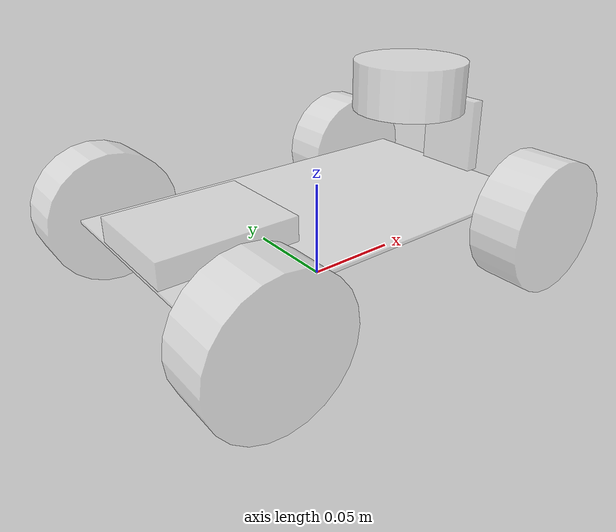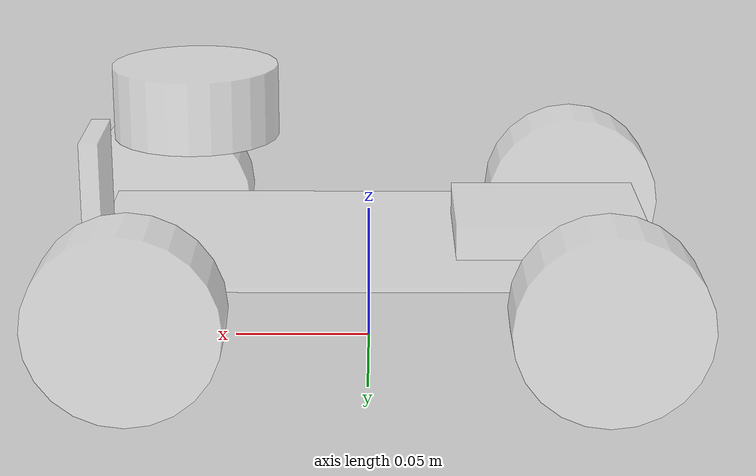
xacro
<?xml version="1.0"?>
<!--
  피지컬AI ROS2 강의에서 만든 ESP32 로봇 (robot.urdf.xacro) 기반.
  링크/조인트 이름과 치수는 원본 그대로이고, Gazebo 에 필요한 collision/inertial 만 추가했다.
  use_sim:=true 일 때만 Gazebo 플러그인(바퀴 구동, 라이다)을 포함한다. 실제 로봇은 use_sim:=false.
-->
<robot xmlns:xacro="http://www.ros.org/wiki/xacro" name="robot">

        <xacro:arg name="use_sim" default="false"/>

        <!-- 관성 계산 매크로 -->
        <xacro:macro name="box_inertial" params="m x y z">
                <inertial>
                        <mass value="${m}"/>
                        <inertia ixx="${m*(y*y+z*z)/12}" ixy="0" ixz="0"
                                 iyy="${m*(x*x+z*z)/12}" iyz="0"
                                 izz="${m*(x*x+y*y)/12}"/>
                </inertial>
        </xacro:macro>

        <xacro:macro name="cylinder_inertial" params="m r h">
                <inertial>
                        <mass value="${m}"/>
                        <inertia ixx="${m*(3*r*r+h*h)/12}" ixy="0" ixz="0"
                                 iyy="${m*(3*r*r+h*h)/12}" iyz="0"
                                 izz="${m*r*r/2}"/>
                </inertial>
        </xacro:macro>

        <!-- 바퀴 매크로: side_sign = 1(왼쪽) / -1(오른쪽), x = 앞뒤 위치 -->
        <xacro:property name="wheel_radius" value="0.0337"/>
        <xacro:property name="wheel_width" value="0.0265"/>

        <xacro:macro name="wheel" params="name x side_sign">
                <joint name="${name}_wheel_joint" type="continuous">
                        <parent link="chassis"/>
                        <child link="${name}_wheel"/>
                        <origin xyz="${x} ${side_sign*0.0725} -0.0047" rpy="${-side_sign*pi/2} 0 0"/>
                        <axis xyz="0 0 ${side_sign}"/>
                </joint>

                <link name="${name}_wheel">
                        <visual>
                                <geometry>
                                        <cylinder radius="${wheel_radius}" length="${wheel_width}"/>
                                </geometry>
                                <material name="white"/>
                        </visual>
                        <collision>
                                <geometry>
                                        <cylinder radius="${wheel_radius}" length="${wheel_width}"/>
                                </geometry>
                        </collision>
                        <xacro:cylinder_inertial m="0.03" r="${wheel_radius}" h="${wheel_width}"/>
                </link>
        </xacro:macro>

        <material name="white">
                <color rgba="1 1 1 0.5"/>
        </material>

        <link name="base_link"></link>

        <joint name="chassis_joint" type="fixed">
                <parent link="base_link"/>
                <child link="chassis"/>
                <origin xyz="0 0 0.0384" rpy="0 0 0"/>
        </joint>

        <link name="chassis">
                <visual>
                        <geometry>
                                <box size="0.2 0.112 0.0016"/>
                        </geometry>
                        <material name="white"/>
                </visual>
                <!-- PCB 위 부품(배터리, 모터 드라이버 등) 높이를 감안해 충돌 상자는 두껍게 잡는다 -->
                <collision>
                        <origin xyz="0 0 0.01" rpy="0 0 0"/>
                        <geometry>
                                <box size="0.2 0.112 0.02"/>
                        </geometry>
                </collision>
                <xacro:box_inertial m="0.5" x="0.2" y="0.112" z="0.02"/>
        </link>

        <xacro:wheel name="front_left" x="0.0814" side_sign="1"/>
        <xacro:wheel name="rear_left" x="-0.0814" side_sign="1"/>
        <xacro:wheel name="front_right" x="0.0814" side_sign="-1"/>
        <xacro:wheel name="rear_right" x="-0.0814" side_sign="-1"/>

        <joint name="laser_joint" type="fixed">
                <parent link="chassis"/>
                <child link="laser_frame"/>
                <origin xyz="0.0625 0 0.053" rpy="0 0 0"/>
        </joint>

        <link name="laser_frame">
                <visual>
                        <geometry>
                                <cylinder radius="0.0299" length="0.026"/>
                        </geometry>
                        <material name="white"/>
                </visual>
                <xacro:cylinder_inertial m="0.05" r="0.0299" h="0.026"/>
        </link>

        <joint name="controller_joint" type="fixed">
                <parent link="chassis"/>
                <child link="controller_frame"/>
                <origin xyz="-0.0657 0 0.0071" rpy="0 0 0"/>
        </joint>

        <link name="controller_frame">
                <visual>
                        <geometry>
                                <box size="0.06858 0.05334 0.0126"/>
                        </geometry>
                        <material name="white"/>
                </visual>
                <xacro:box_inertial m="0.02" x="0.06858" y="0.05334" z="0.0126"/>
        </link>

        <joint name="camera_joint" type="fixed">
                <parent link="chassis"/>
                <child link="camera_link"/>
                <origin xyz="0.1 0 0.0208" rpy="0 0 0"/>
        </joint>

        <link name="camera_link">
                <visual>
                        <geometry>
                                <box size="0.007 0.034 0.040"/>
                        </geometry>
                        <material name="white"/>
                </visual>
                <xacro:box_inertial m="0.01" x="0.007" y="0.034" z="0.040"/>
        </link>

        <joint name="camera_optical_joint" type="fixed">
                <parent link="camera_link"/>
                <child link="camera_link_optical"/>
                <origin xyz="0 0 0" rpy="${-pi/2} 0 ${-pi/2}"/>
        </joint>

        <link name="camera_link_optical"></link>

        <joint name="base_footprint_joint" type="fixed">
                <parent link="base_link"/>
                <child link="base_footprint"/>
                <origin xyz="0 0 0" rpy="0 0 0"/>
        </joint>

        <link name="base_footprint"></link>

        <xacro:if value="$(arg use_sim)">
                <xacro:include filename="$(find security_patrol)/urdf/patrol_bot.gazebo.xacro"/>
        </xacro:if>
</robot>
